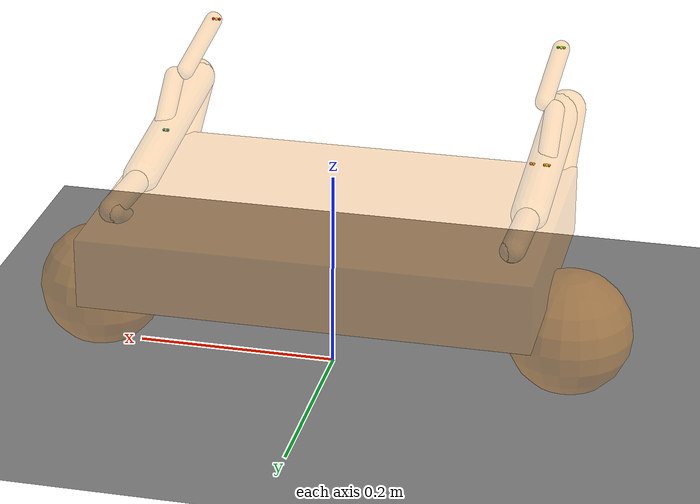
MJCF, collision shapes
<?xml version='1.0' encoding='utf-8'?>
<mujoco model="wheel_leg_urdf4_v1_debug_formal_1ms_unbounded">
  <!-- DEBUG-ONLY unbounded copy; command/mechanical limits disabled; not formal --><compiler angle="radian" meshdir="E:/wheel_leg_rl-main/wheelleg_dreamwaq/sim2sim/mujoco/models/meshes" />
  <option timestep="0.001" gravity="0 0 -9.81">
    <flag filterparent="disable" />
  </option>
  <default>
    <joint damping="0.02" armature="0.01" limited="false" />
    <geom contype="0" conaffinity="0" group="1" friction="1.2 0.02 0.001" solref="0.004 1" solimp="0.95 0.99 0.001 0.5 2" />
    <motor ctrllimited="false" forcelimited="false" />
  </default>
  <visual>
    <global realtime="1" />
    <quality shadowsize="16384" numslices="28" offsamples="4" />
    <headlight diffuse="0.5 0.5 0.5" specular="0.2 0.2 0.2" active="1" />
  </visual>
  <asset>
    <mesh name="base_link_original_part_000" file="base_link_part_000.STL" />
    <mesh name="base_link_original_part_001" file="base_link_part_001.STL" />
    <mesh name="base_link_original_part_002" file="base_link_part_002.STL" />
    <mesh name="jIO" file="jIO.STL" />
    <mesh name="jOP" file="jOP.STL" />
    <mesh name="jwheel_left" file="jwheel_left.STL" />
    <mesh name="jAG" file="jAG.STL" />
    <mesh name="jGH" file="jGH.STL" />
    <mesh name="jwheel_right" file="jwheel_right.STL" />
    <mesh name="jIJ" file="jIJ.STL" />
    <mesh name="jJM" file="jJM.STL" />
    <mesh name="jMK" file="jMK.STL" />
    <mesh name="jKN" file="jKN.STL" />
    <mesh name="jAB" file="jAB.STL" />
    <mesh name="jBE" file="jBE.STL" />
    <mesh name="jEC" file="jEC.STL" />
    <mesh name="jCF" file="jCF.STL" />
    <texture name="plane" type="2d" builtin="checker" rgb1=".1 .1 .1" rgb2=".9 .9 .9" width="512" height="512" mark="cross" markrgb=".8 .8 .8" />
    <material name="plane" reflectance="0.3" texture="plane" texrepeat="1 1" texuniform="true" />
    <material name="box" rgba="0 0.5 0 1" emission="0" />
    <material name="base_mat" rgba="0.2 0.2 0.25 1" specular="0.5" shininess="0.5" />
    <material name="arm_blue" rgba="0.3 0.5 0.8 1" specular="0.8" shininess="0.8" />
    <material name="arm_red" rgba="0.8 0.3 0.3 1" specular="0.8" shininess="0.8" />
    <material name="arm_green" rgba="0.3 0.8 0.4 1" specular="0.8" shininess="0.8" />
    <material name="joint_mat" rgba="0.7 0.7 0.75 1" specular="1.0" shininess="1.0" />
    <material name="wheel_mat" rgba="0.15 0.15 0.2 1" specular="0.3" shininess="0.2" />
    <material name="white_mat" rgba="0.95 0.95 0.97 1" specular="0.9" shininess="0.7" />
  </asset>
  <worldbody>
    <geom name="floor" pos="0 0 0" size="0 0 .25" type="plane" material="plane" condim="3" contype="0" conaffinity="0" />
    <light directional="true" ambient=".15 .15 .15" pos="30 30 30" dir="0 -.5 -1" diffuse=".3 .3 .3" specular=".3 .3 .3" />
    <body name="base" pos="-0.0417103203611099 1.27388449249164 0.1207548">
      <freejoint name="base_free" />
      <inertial pos="0.041710000485181808 -1.2738850116729736 0.010447000153362751" quat="0.99999898672103882 -0.00079999997979030013 1.1000000085914508e-05 -0.00072800001362338662" mass="2.9590079784393311" diaginertia="0.0056480001658201218 0.005051999818533659 0.0075730001553893089" />
      <geom type="mesh" material="base_mat" mesh="base_link_original_part_000" contype="0" conaffinity="0" />
      <geom type="mesh" material="base_mat" mesh="base_link_original_part_001" contype="0" conaffinity="0" />
      <geom type="mesh" material="base_mat" mesh="base_link_original_part_002" contype="0" conaffinity="0" />
      <geom name="base_proxy" type="box" pos="0.0417103 -1.2738845 0.018" size="0.22 0.14 0.035" rgba="1 0.55 0.05 0.28" contype="0" conaffinity="0" group="3" />
      <body name="jIO" pos="-0.152299 -1.27 0.0619694" quat="0.707107 0 0 0.707107">
        <inertial pos="-0.1054529994726181 -0.012300999835133553 0.015938999131321907" quat="0.99775600433349609 -0.0017989999614655972 0.06693500280380249 -0.00025300000561401248" mass="0.077344000339508057" diaginertia="2.5999999706982635e-05 0.00047400000039488077 0.00044999999227002263" />
        <joint name="jIO" pos="0 0 0" axis="0 -1 0" frictionloss="0" damping="0" armature="0.05" limited="false" />
        <geom type="mesh" material="arm_red" mesh="jIO" contype="0" conaffinity="0" />
        <geom name="jIO_proxy" type="capsule" fromto="0 0 0 -0.21 0 0.025" size="0.018" rgba="1 0.55 0.05 0.28" contype="0" conaffinity="0" group="3" />
        <site name="site_mk_io_b1" pos="-0.0963553 0.00397196 0.0109404" size="0.0015" rgba="1 0.6 0 1" />
        <site name="site_mk_io_b2" pos="-0.0963553 -0.00062804 0.0109404" size="0.0015" rgba="1 0.6 0 1" />
        <body name="jOP" pos="-0.213571 0.00337196 0.0245218">
          <inertial pos="0.085640996694564819 -0.0054259998723864555 -0.056894998997449875" quat="0.95343798398971558 0 0.30158799886703491 0" mass="0.12646499276161194" diaginertia="4.9999998736893758e-05 0.0011950000189244747 0.0011480000102892518" />
          <joint name="jOP" pos="0 0 0" axis="0 -1 0" frictionloss="0" damping="0.05" armature="0.005" limited="false" />
          <geom type="mesh" material="joint_mat" mesh="jOP" contype="0" conaffinity="0" />
          <geom name="jOP_proxy" type="capsule" fromto="0 0 0 0.20 0 -0.135" size="0.020" rgba="1 0.55 0.05 0.28" contype="0" conaffinity="0" group="3" />
          <site name="site_kn_op_b1" pos="-0.0373868 -0.0165 0.0516985" size="0.0015" rgba="0 1 0 1" />
          <site name="site_kn_op_b2" pos="-0.0373868 -0.01 0.0516985" size="0.0015" rgba="0 1 0 1" />
          <body name="jwheel_left" pos="0.213571 0.0402 -0.144746">
            <inertial pos="0.00013600000238511711 -0.021683000028133392 -0.00031900001340545714" quat="0.97974997758865356 -0.0024679999332875013 -0.20021100342273712 -0.00051400001393631101" mass="0.40035301446914673" diaginertia="0.00034800000139512122 0.00057700002798810601 0.00035300001036375761" />
            <joint name="jwheel_left" pos="0 0 0" axis="0 -1 0" frictionloss="0" damping="0" armature="0.05" limited="false" />
            <geom type="mesh" material="arm_red" mesh="jwheel_left" contype="0" conaffinity="0" />
            <geom name="left_wheel_proxy" type="sphere" size="0.0625" rgba="1 0.55 0.05 0.35" contype="0" conaffinity="0" group="3" />
          </body>
          <site name="OP-N" pos="-0.0373868 -0.01325 0.05169847" size="0.0015" rgba="0.9 0.9 0.2 1" />
        </body>
        <site name="site_io_ref1" pos="-0.0963552 -0.014128 0.0109403" size="0.0015" rgba="1 0.6 0 1" />
        <site name="site_io_ref2" pos="-0.0963552 -0.011628 0.0109403" size="0.0015" rgba="1 0.6 0 1" />
        <site name="IO-L" pos="-0.0963553 0.00167196 0.01094037" size="0.0015" rgba="0.9 0.9 0.2 1" />
        <body name="jIO_dummy_child_link1" pos="-0.096354990956348807 -0.01412806167886918 0.010940999999999999" quat="1 0 0 0">
          <inertial pos="0 0 0" quat="1 0 0 0" mass="0.0099999997764825821" diaginertia="9.9999997473787516e-05 9.9999997473787516e-05 9.9999997473787516e-05" />
          <joint name="jIO_dummy_child_link1" pos="0 0 0" axis="0 -1 0" frictionloss="0" damping="0.05" armature="0.005" limited="false" />
        </body>
        <body name="jIO_dummy_child_link2" pos="-0.096354992556651586 -0.011628061678869706 0.010940999999999999" quat="1 0 0 0">
          <inertial pos="0 0 0" quat="1 0 0 0" mass="0.0099999997764825821" diaginertia="9.9999997473787516e-05 9.9999997473787516e-05 9.9999997473787516e-05" />
          <joint name="jIO_dummy_child_link2" pos="0 0 0" axis="0 -1 0" frictionloss="0" damping="0.05" armature="0.005" limited="false" />
        </body>
      </body>
      <body name="jAG" pos="0.236557 -1.27 0.0619694" quat="0.707107 0 0 0.707107">
        <inertial pos="-0.1054529994726181 0.012300999835133553 0.015938999131321907" quat="0.99775600433349609 0.0017989999614655972 0.06693500280380249 0.00025300000561401248" mass="0.077344000339508057" diaginertia="2.5999999706982635e-05 0.00047400000039488077 0.00044999999227002263" />
        <joint name="jAG" pos="0 0 0" axis="0 -1 0" frictionloss="0" damping="0" armature="0.05" limited="false" />
        <geom type="mesh" material="arm_blue" mesh="jAG" contype="0" conaffinity="0" />
        <geom name="jAG_proxy" type="capsule" fromto="0 0 0 -0.21 0 0.025" size="0.018" rgba="1 0.55 0.05 0.28" contype="0" conaffinity="0" group="3" />
        <site name="site_ec_ag_b1" pos="-0.0963556 -0.00397196 0.0109404" size="0.0015" rgba="0 0.7 1 1" />
        <site name="site_ec_ag_b2" pos="-0.0963556 2.804e-05 0.0109404" size="0.0015" rgba="0 0.7 1 1" />
        <body name="jGH" pos="-0.213571 -0.00337196 0.0245218">
          <inertial pos="0.085766002535820007 0.0054199998266994953 -0.056977998465299606" quat="0.95343798398971558 0 0.30158799886703491 0" mass="0.12628099322319031" diaginertia="4.9999998736893758e-05 0.0011950000189244747 0.0011480000102892518" />
          <joint name="jGH" pos="0 0 0" axis="0 1 0" frictionloss="0" damping="0.05" armature="0.005" limited="false" />
          <geom type="mesh" material="joint_mat" mesh="jGH" contype="0" conaffinity="0" />
          <geom name="jGH_proxy" type="capsule" fromto="0 0 0 0.20 0 -0.135" size="0.020" rgba="1 0.55 0.05 0.28" contype="0" conaffinity="0" group="3" />
          <site name="site_cf_gh_b1" pos="-0.0373871 0.0165 0.0516985" size="0.0015" rgba="1 0 0 1" />
          <site name="site_cf_gh_b2" pos="-0.0373871 0.01 0.0516985" size="0.0015" rgba="1 0 0 1" />
          <body name="jwheel_right" pos="0.213571 -0.0402 -0.144746">
            <inertial pos="9.899999713525176e-05 0.021683000028133392 -0.00033300000359304249" quat="0.98955798149108887 0.002495999913662672 -0.14411099255084991 0.00035399998887442052" mass="0.40035301446914673" diaginertia="0.00034800000139512122 0.00057700002798810601 0.00035300001036375761" />
            <joint name="jwheel_right" pos="0 0 0" axis="0 1 0" frictionloss="0" damping="0" armature="0.05" limited="false" />
            <geom type="mesh" material="arm_blue" mesh="jwheel_right" contype="0" conaffinity="0" />
            <geom name="right_wheel_proxy" type="sphere" size="0.0625" rgba="1 0.55 0.05 0.35" contype="0" conaffinity="0" group="3" />
          </body>
          <site name="GH-F" pos="-0.0373871 0.01325 0.05169847" size="0.0015" rgba="0.9 0.9 0.2 1" />
        </body>
        <site name="AG-D" pos="-0.0963556 -0.00197196 0.01094037" size="0.0015" rgba="0.9 0.9 0.2 1" />
        <body name="jAG_dummy_child_link1" pos="-0.096355009043611828 0.014127938321124994 0.010940999999999999" quat="1 0 0 0">
          <inertial pos="0 0 0" quat="1 0 0 0" mass="0.0099999997764825821" diaginertia="9.9999997473787516e-05 9.9999997473787516e-05 9.9999997473787516e-05" />
          <joint name="jAG_dummy_child_link1" pos="0 0 0" axis="0 -1 0" frictionloss="0" damping="0.05" armature="0.005" limited="false" />
        </body>
        <body name="jAG_dummy_child_link2" pos="-0.096355012244217386 0.019127938321123972 0.010940999999999999" quat="1 0 0 0">
          <inertial pos="0 0 0" quat="1 0 0 0" mass="0.0099999997764825821" diaginertia="9.9999997473787516e-05 9.9999997473787516e-05 9.9999997473787516e-05" />
          <joint name="jAG_dummy_child_link2" pos="0 0 0" axis="0 -1 0" frictionloss="0" damping="0.05" armature="0.005" limited="false" />
        </body>
      </body>
      <body name="jIJ" pos="-0.152299 -1.27 0.0619694" quat="0.707107 0 0 0.707107">
        <inertial pos="0.041016001254320145 0.0022549999412149191 0.0027310000732541084" quat="0.99935299158096313 -1.4000000192027073e-05 -0.035950999706983566 0.00043499999446794391" mass="0.019355999305844307" diaginertia="3.9999999899009708e-06 2.8000000384054147e-05 2.4000000848900527e-05" />
        <joint name="jIJ" pos="0 0 0" axis="0 -1 0" frictionloss="0" damping="0" armature="0.05" limited="false" />
        <geom type="mesh" material="joint_mat" mesh="jIJ" contype="0" conaffinity="0" />
        <geom name="jIJ_proxy" type="capsule" fromto="0 0 0 0.095 0 0.007" size="0.012" rgba="1 0.55 0.05 0.28" contype="0" conaffinity="0" group="3" />
        <body name="jJM" pos="0.0967494 -0.00262804 0.00674587">
          <inertial pos="-0.053449999541044235 -0.0037070000544190407 -0.034467998892068863" quat="0.96212399005889893 -0.0021720000077039003 -0.27260300517082214 -0.00061400001868605614" mass="0.0067699998617172241" diaginertia="7.7046117041845719e-08 7.9999999798019417e-06 7.9999999798019417e-06" />
          <joint name="jJM" pos="0 0 0" axis="0 1 0" frictionloss="0" damping="0.05" armature="0.005" limited="false" />
          <geom type="mesh" material="arm_red" mesh="jJM" contype="0" conaffinity="0" />
          <geom name="jJM_proxy" type="capsule" fromto="0 0 0 -0.095 0 -0.060" size="0.010" rgba="1 0.55 0.05 0.28" contype="0" conaffinity="0" group="3" />
          <body name="jMK" pos="-0.0979082 0.0051 -0.060324">
            <inertial pos="-0.075955003499984741 -0.00292599992826581 0.05783500149846077" quat="0.9399610161781311 0 0.34128099679946899 0" mass="0.019805999472737312" diaginertia="1.9999999949504854e-06 5.1999998731844237e-05 4.9999998736893758e-05" />
            <joint name="jMK" pos="0 0 0" axis="0 1 0" frictionloss="0" damping="0.05" armature="0.005" limited="false" />
            <geom type="mesh" material="joint_mat" mesh="jMK" contype="0" conaffinity="0" />
            <geom name="jMK_proxy" type="capsule" fromto="0 0 0 -0.13 0 0.11" size="0.010" rgba="1 0.55 0.05 0.28" contype="0" conaffinity="0" group="3" />
            <body name="jKN" pos="-0.132583 -0.01135 0.116217">
              <inertial pos="-0.062065999954938889 -0.0003389999910723418 0.0071910000406205654" quat="0.99833500385284424 8.2999998994637281e-05 0.05764399841427803 0.0022319999989122152" mass="0.0086209997534751892" diaginertia="1.09596399511247e-07 1.1000000085914508e-05 1.1000000085914508e-05" />
              <joint name="jKN" pos="0 0 0" axis="0 1 0" frictionloss="0" damping="0.05" armature="0.005" limited="false" />
              <geom type="mesh" material="arm_red" mesh="jKN" contype="0" conaffinity="0" />
              <geom name="jKN_proxy" type="capsule" fromto="0 0 0 -0.11 0 0.015" size="0.009" rgba="1 0.55 0.05 0.28" contype="0" conaffinity="0" group="3" />
              <site name="site_kn_op_a1" pos="-0.117216 -0.00425 0.0135814" size="0.0015" rgba="0 1 0 1" />
              <site name="site_kn_op_a2" pos="-0.117216 0.00225 0.0135814" size="0.0015" rgba="0 1 0 1" />
              <site name="KN-N" pos="-0.117216 -0.001 0.0135814" size="0.0015" rgba="0.9 0.9 0.2 1" />
              <body name="jKN_dummy_child_link1" pos="-0.11721499727946094 -0.0042500750317981395 0.01358100000000001" quat="1 0 0 0">
                <inertial pos="0 0 0" quat="1 0 0 0" mass="0.0099999997764825821" diaginertia="9.9999997473787516e-05 9.9999997473787516e-05 9.9999997473787516e-05" />
                <joint name="jKN_dummy_child_link1" pos="0 0 0" axis="0 1 0" frictionloss="0" damping="0.05" armature="0.005" limited="false" />
              </body>
              <body name="jKN_dummy_child_link2" pos="-0.11721500144024821 0.002249924968200534 0.01358100000000001" quat="1 0 0 0">
                <inertial pos="0 0 0" quat="1 0 0 0" mass="0.0099999997764825821" diaginertia="9.9999997473787516e-05 9.9999997473787516e-05 9.9999997473787516e-05" />
                <joint name="jKN_dummy_child_link2" pos="0 0 0" axis="0 1 0" frictionloss="0" damping="0.05" armature="0.005" limited="false" />
              </body>
            </body>
            <site name="site_mk_io_a1" pos="-0.0951965 0.0015 0.0645185" size="0.0015" rgba="1 0.6 0 1" />
            <site name="site_mk_io_a2" pos="-0.0951965 -0.0031 0.0645185" size="0.0015" rgba="1 0.6 0 1" />
            <site name="MK-L" pos="-0.0951965 -0.0008 0.0645185" size="0.0015" rgba="0.9 0.9 0.2 1" />
            <body name="jMK_dummy_child1" pos="-0.095196000960162452 0.0014999390630280052 0.064519000000000007" quat="1 0 0 0">
              <inertial pos="0 0 0" quat="1 0 0 0" mass="0.0099999997764825821" diaginertia="9.9999997473787516e-05 9.9999997473787516e-05 9.9999997473787516e-05" />
              <joint name="jMK_dummy_child1" pos="0 0 0" axis="0 1 0" frictionloss="0" damping="0.05" armature="0.005" limited="false" />
            </body>
            <body name="jMK_dummy_child2" pos="-0.095195998015605188 -0.0031000609369710441 0.064519000000000007" quat="1 0 0 0">
              <inertial pos="0 0 0" quat="1 0 0 0" mass="0.0099999997764825821" diaginertia="9.9999997473787516e-05 9.9999997473787516e-05 9.9999997473787516e-05" />
              <joint name="jMK_dummy_child2" pos="0 0 0" axis="0 1 0" frictionloss="0" damping="0.05" armature="0.005" limited="false" />
            </body>
          </body>
        </body>
      </body>
      <body name="jAB" pos="0.236557 -1.27 0.0619694" quat="0.707107 0 0 0.707107">
        <inertial pos="0.041016001254320145 -0.0022549999412149191 0.0027310000732541084" quat="0.99935299158096313 1.4000000192027073e-05 -0.035950999706983566 -0.00043499999446794391" mass="0.019355999305844307" diaginertia="3.9999999899009708e-06 2.8000000384054147e-05 2.4000000848900527e-05" />
        <joint name="jAB" pos="0 0 0" axis="0 -1 0" frictionloss="0" damping="0" armature="0.05" limited="false" />
        <geom type="mesh" material="joint_mat" mesh="jAB" contype="0" conaffinity="0" />
        <geom name="jAB_proxy" type="capsule" fromto="0 0 0 0.095 0 0.007" size="0.012" rgba="1 0.55 0.05 0.28" contype="0" conaffinity="0" group="3" />
        <body name="jBE" pos="0.0967491 0.00262804 0.00674587">
          <inertial pos="-0.053449999541044235 0.0042070001363754272 -0.034467998892068863" quat="0.96212399005889893 0.0021720000077039003 -0.27260300517082214 0.00061400001868605614" mass="0.0067699998617172241" diaginertia="7.7046117041845719e-08 7.9999999798019417e-06 7.9999999798019417e-06" />
          <joint name="jBE" pos="0 0 0" axis="0 -1 0" frictionloss="0" damping="0.05" armature="0.005" limited="false" />
          <geom type="mesh" material="arm_blue" mesh="jBE" contype="0" conaffinity="0" />
          <geom name="jBE_proxy" type="capsule" fromto="0 0 0 -0.095 0 -0.060" size="0.010" rgba="1 0.55 0.05 0.28" contype="0" conaffinity="0" group="3" />
          <body name="jEC" pos="-0.0979082 -0.0046 -0.060324">
            <inertial pos="-0.075955003499984741 0.0024260000791400671 0.05783500149846077" quat="0.9399610161781311 0 0.34128099679946899 0" mass="0.019805999472737312" diaginertia="1.9999999949504854e-06 5.1999998731844237e-05 4.9999998736893758e-05" />
            <joint name="jEC" pos="0 0 0" axis="0 1 0" frictionloss="0" damping="0.05" armature="0.005" limited="false" />
            <geom type="mesh" material="joint_mat" mesh="jEC" contype="0" conaffinity="0" />
            <geom name="jEC_proxy" type="capsule" fromto="0 0 0 -0.13 0 0.11" size="0.010" rgba="1 0.55 0.05 0.28" contype="0" conaffinity="0" group="3" />
            <body name="jCF" pos="-0.132583 0.01085 0.116217">
              <inertial pos="-0.062065999954938889 0.0003389999910723418 0.0071910000406205654" quat="0.99833500385284424 -8.2999998994637281e-05 0.05764399841427803 -0.0022319999989122152" mass="0.0086209997534751892" diaginertia="1.09596399511247e-07 1.1000000085914508e-05 1.1000000085914508e-05" />
              <joint name="jCF" pos="0 0 0" axis="0 -1 0" frictionloss="0" damping="0.05" armature="0.005" limited="false" />
              <geom type="mesh" material="arm_blue" mesh="jCF" contype="0" conaffinity="0" />
              <geom name="jCF_proxy" type="capsule" fromto="0 0 0 -0.11 0 0.015" size="0.009" rgba="1 0.55 0.05 0.28" contype="0" conaffinity="0" group="3" />
              <site name="site_cf_gh_a1" pos="-0.117216 0.00425 0.0135814" size="0.0015" rgba="1 0 0 1" />
              <site name="site_cf_gh_a2" pos="-0.117216 -0.00225 0.0135814" size="0.0015" rgba="1 0 0 1" />
              <site name="CF-F" pos="-0.117216 0.001 0.0135814" size="0.0015" rgba="0.9 0.9 0.2 1" />
              <body name="jCF_dummy_child_link1" pos="-0.11721600272049071 0.0042499249675600204 0.01358100000000001" quat="1 0 0 0">
                <inertial pos="0 0 0" quat="1 0 0 0" mass="0.0099999997764825821" diaginertia="9.9999997473787516e-05 9.9999997473787516e-05 9.9999997473787516e-05" />
                <joint name="jCF_dummy_child_link1" pos="0 0 0" axis="0 -1 0" frictionloss="0" damping="0.05" armature="0.005" limited="false" />
              </body>
              <body name="jCF_dummy_child_link2" pos="-0.11721599855970344 -0.0022500750324386531 0.01358100000000001" quat="1 0 0 0">
                <inertial pos="0 0 0" quat="1 0 0 0" mass="0.0099999997764825821" diaginertia="9.9999997473787516e-05 9.9999997473787516e-05 9.9999997473787516e-05" />
                <joint name="jCF_dummy_child_link2" pos="0 0 0" axis="0 -1 0" frictionloss="0" damping="0.05" armature="0.005" limited="false" />
              </body>
            </body>
            <site name="site_ec_ag_a1" pos="-0.0951965 -0.002 0.0645185" size="0.0015" rgba="0 0.7 1 1" />
            <site name="site_ec_ag_a2" pos="-0.0951965 0.002 0.0645185" size="0.0015" rgba="0 0.7 1 1" />
            <site name="EC-D" pos="-0.0951965 0 0.0645185" size="0.0015" rgba="0.9 0.9 0.2 1" />
            <body name="jEC_dummy_child_link1" pos="-0.095195998719738384 -0.0020000609369712763 0.064519000000000007" quat="1 0 0 0">
              <inertial pos="0 0 0" quat="1 0 0 0" mass="0.0099999997764825821" diaginertia="9.9999997473787516e-05 9.9999997473787516e-05 9.9999997473787516e-05" />
              <joint name="jEC_dummy_child_link1" pos="0 0 0" axis="0 1 0" frictionloss="0" damping="0.05" armature="0.005" limited="false" />
            </body>
            <body name="jEC_dummy_child_link2" pos="-0.095196001280222875 0.0019999390630279223 0.064519000000000007" quat="1 0 0 0">
              <inertial pos="0 0 0" quat="1 0 0 0" mass="0.0099999997764825821" diaginertia="9.9999997473787516e-05 9.9999997473787516e-05 9.9999997473787516e-05" />
              <joint name="jEC_dummy_child_link2" pos="0 0 0" axis="0 1 0" frictionloss="0" damping="0.05" armature="0.005" limited="false" />
            </body>
          </body>
        </body>
      </body>
    </body>
  </worldbody>
  <contact>
    <pair name="floor_left_wheel" geom1="floor" geom2="left_wheel_proxy" condim="3" friction="1 1 0 0 0" solref="0.004 1" solimp="0.95 0.99 0.001 0.5 2" />
    <pair name="floor_right_wheel" geom1="floor" geom2="right_wheel_proxy" condim="3" friction="1 1 0 0 0" solref="0.004 1" solimp="0.95 0.99 0.001 0.5 2" />
  </contact>
  <equality>
    <connect name="connect_cf_gh_1" site1="site_cf_gh_a1" site2="site_cf_gh_b1" solref="0.002 1" solimp="0.9 0.95 0.001" />
    <connect name="connect_cf_gh_2" site1="site_cf_gh_a2" site2="site_cf_gh_b2" solref="0.002 1" solimp="0.9 0.95 0.001" />
    <connect name="connect_kn_op_1" site1="site_kn_op_a1" site2="site_kn_op_b1" solref="0.002 1" solimp="0.9 0.95 0.001" />
    <connect name="connect_kn_op_2" site1="site_kn_op_a2" site2="site_kn_op_b2" solref="0.002 1" solimp="0.9 0.95 0.001" />
    <connect name="connect_ec_ag_1" site1="site_ec_ag_a1" site2="site_ec_ag_b1" solref="0.002 1" solimp="0.9 0.95 0.001" />
    <connect name="connect_ec_ag_2" site1="site_ec_ag_a2" site2="site_ec_ag_b2" solref="0.002 1" solimp="0.9 0.95 0.001" />
    <connect name="connect_mk_io_1" site1="site_mk_io_a1" site2="site_mk_io_b1" solref="0.002 1" solimp="0.9 0.95 0.001" />
    <connect name="connect_mk_io_2" site1="site_mk_io_a2" site2="site_mk_io_b2" solref="0.002 1" solimp="0.9 0.95 0.001" />
  </equality>
  <actuator>
    <motor name="Left_front_joint_act" joint="jIJ" gear="1" ctrllimited="false" forcelimited="false" />
    <motor name="Left_rear_joint_act" joint="jIO" gear="1" ctrllimited="false" forcelimited="false" />
    <motor name="Right_rear_joint_act" joint="jAG" gear="1" ctrllimited="false" forcelimited="false" />
    <motor name="Right_front_joint_act" joint="jAB" gear="1" ctrllimited="false" forcelimited="false" />
    <motor name="Left_Wheel_act" joint="jwheel_left" gear="1" ctrllimited="false" forcelimited="false" />
    <motor name="Right_Wheel_act" joint="jwheel_right" gear="1" ctrllimited="false" forcelimited="false" />
  </actuator>
  <keyframe>
    <key name="contract_v4_reset" qpos="-0.041710320361109901 1.2738844924916399 0.20003000000000001 1 0 0 0 0.33367156999999997 -0.37150037000000002 0 -0.019754569999999999 -0.019754549999999999 0.33367111999999999 0.37148618999999999 0 -0.00834354 -0.00834353 -0.33367151 -0.37146847999999999 0.075627180000000002 -0.37150618000000002 -0.065631170000000003 -0.066132479999999993 -0.068970400000000001 -0.068974110000000005 -0.33367088 0.37146657999999999 0.075624350000000007 0.37150582999999998 0.015611089999999999 0.016089249999999999 0.0027934399999999999 0.0027937000000000001" />
  </keyframe>
</mujoco>
